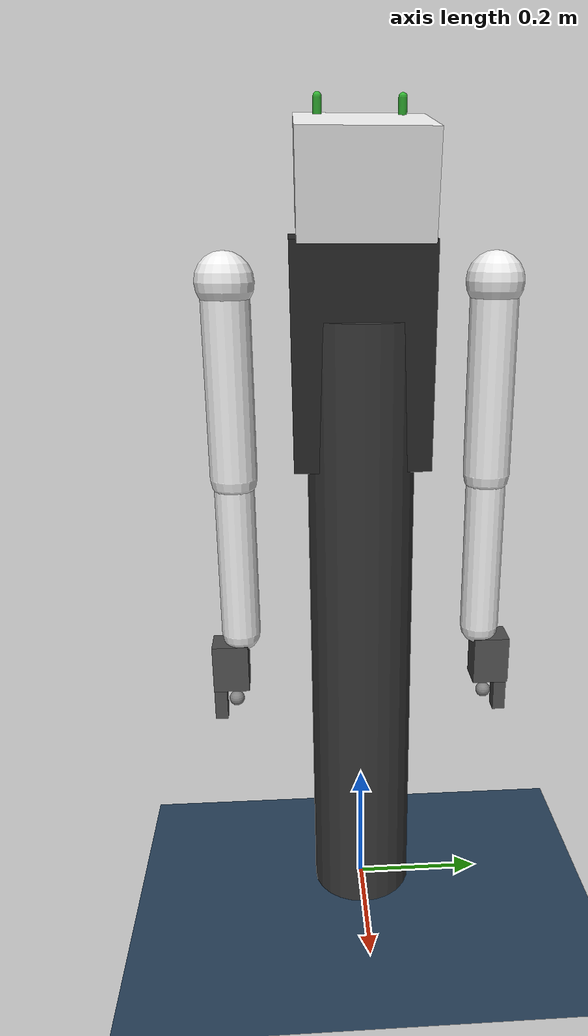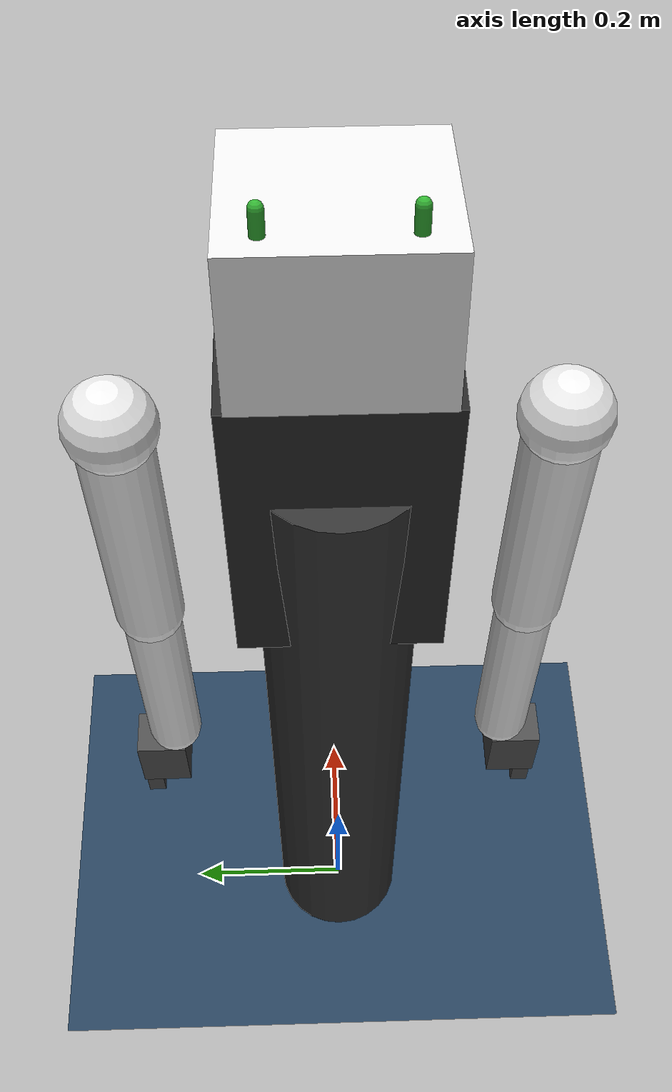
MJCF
<mujoco model="reachy_1_2">

  <compiler angle="radian" meshdir="meshes"/>

  <!-- implicitfast is A-stable: handles stiff actuators (antennas) without NaN -->
  <option timestep="0.002" gravity="0 0 -9.81" iterations="50" solver="Newton"
          integrator="implicitfast" noslip_iterations="10"/>

  <default>
    <!-- Visual proxy: rendered, never collides, carries body mass/inertia. -->
    <default class="visual">
      <geom group="2" contype="0" conaffinity="0"/>
    </default>
    <!-- Robot collision proxy: mass-free contact shape, robot category. -->
    <default class="collision">
      <geom group="3" contype="2" conaffinity="5" mass="0"
            rgba="1 0.5 0.5 0.3"/>
    </default>
    <!-- Static world collision (floor/table/pedestal). -->
    <default class="world">
      <geom contype="1" conaffinity="6"/>
    </default>
  </default>

  <visual>
    <headlight diffuse="0.6 0.6 0.6" ambient="0.3 0.3 0.3" specular="0 0 0"/>
    <rgba haze="0.15 0.25 0.35 1"/>
    <quality shadowsize="2048"/>
    <global offwidth="1280" offheight="960"/>
  </visual>

  <asset>
    <texture name="skybox" type="skybox" builtin="gradient"
             rgb1="0.3 0.5 0.7" rgb2="0 0 0" width="512" height="3072"/>
    <texture name="groundtex" type="2d" builtin="checker" mark="edge"
             rgb1="0.2 0.3 0.4" rgb2="0.1 0.2 0.3" markrgb="0.8 0.8 0.8"
             width="300" height="300"/>
    <material name="groundplane" texture="groundtex" texuniform="true"
              texrepeat="5 5" reflectance="0.2"/>
    <material name="frame"         rgba="0.15 0.15 0.15 1"/>
    <material name="white_plastic" rgba="0.92 0.92 0.92 1"/>
    <material name="dark_gray"     rgba="0.20 0.20 0.20 1"/>
    <material name="gripper_mat"   rgba="0.30 0.30 0.30 1"/>
    <material name="antenna_mat"   rgba="0.20 0.70 0.20 1"/>
    <material name="table_mat"     rgba="0.80 0.70 0.55 1"/>
  </asset>

  <worldbody>
    <!-- ── Environment ─────────────────────────────────────────── -->
    <geom name="floor" class="world" type="plane" size="3 3 0.1"
          material="groundplane"/>
    <light name="overhead" pos="0 0 3" dir="0 0 -1"
           diffuse="0.8 0.8 0.8" specular="0.2 0.2 0.2"/>
    <light name="fill" pos="-1 1 2" dir="1 -1 -1"
           diffuse="0.3 0.3 0.3" specular="0 0 0"/>

    <!-- ── Pedestal (fixed base) ───────────────────────────────── -->
    <!-- URDF: pedestal joint xyz=0 0 1  ⟹ torso origin is 1 m above world -->
    <body name="pedestal" pos="0 0 0">
      <geom name="pedestal_geom" class="world" type="cylinder"
            fromto="0 0 0 0 0 0.95" size="0.08" material="dark_gray"/>

      <!-- ── Torso ─────────────────────────────────────────────── -->
      <body name="torso" pos="0 0 1">
        <inertial pos="0 0 0" mass="12" diaginertia="0.15 0.15 0.08"/>
        <geom name="torso_main" class="visual" type="box"
              size="0.055 0.10 0.16" pos="0 0 -0.1" euler="0 0.05 0"
              material="frame"/>
        <geom name="torso_col" class="collision" type="box"
              size="0.055 0.10 0.16" pos="0 0 -0.1" euler="0 0.05 0"/>

        <!-- ════════════════════ RIGHT ARM ════════════════════════ -->
        <!-- r_shoulder — URDF: torso→r_shoulder xyz=0 -0.19 0 -->
        <body name="r_shoulder" pos="0 -0.19 0">
          <joint name="r_shoulder_pitch" type="hinge" axis="0 1 0"
                 range="-2.618 1.57" damping="1.5"/>
          <geom name="r_shoulder_ball" class="visual" type="sphere" size="0.042"
                material="white_plastic"/>

          <!-- r_shoulder_x — URDF: r_shoulder→r_shoulder_x xyz=0 0 0 -->
          <body name="r_shoulder_x" pos="0 0 0">
            <joint name="r_shoulder_roll" type="hinge" axis="1 0 0"
                   range="-3.14 0.174" damping="1.5"/>
            <!-- massless intermediate frame — tiny marker sphere -->
            <geom name="r_shx_marker" class="visual" type="sphere" size="0.005"
                  material="dark_gray" mass="0.001"/>

            <!-- r_upper_arm — URDF: r_shoulder_x→r_upper_arm xyz=0 0 0 -->
            <body name="r_upper_arm" pos="0 0 0">
              <joint name="r_arm_yaw" type="hinge" axis="0 0 1"
                     range="-1.57 1.57" damping="1.0"/>
              <geom name="r_upper_arm_cap" class="visual" type="capsule"
                    fromto="0 0 0 0 0 -0.28" size="0.035"
                    material="white_plastic"/>
              <geom name="r_upper_arm_col" class="collision" type="capsule"
                    fromto="0 0 0 0 0 -0.28" size="0.035"/>

              <!-- r_forearm — URDF: r_upper_arm→r_forearm xyz=0 0 -0.28 -->
              <body name="r_forearm" pos="0 0 -0.28">
                <joint name="r_elbow_pitch" type="hinge" axis="0 1 0"
                       range="-2.182 0" damping="0.8"/>
                <geom name="r_elbow_ball" class="visual" type="sphere" size="0.032"
                      material="frame"/>
                <geom name="r_forearm_cap" class="visual" type="capsule"
                      fromto="0 0 0 0 0 -0.25" size="0.030"
                      material="white_plastic"/>
                <geom name="r_forearm_col" class="collision" type="capsule"
                      fromto="0 0 0 0 0 -0.25" size="0.030"/>

                <!-- r_wrist — URDF: r_forearm→r_wrist xyz=0 0 0 -->
                <body name="r_wrist" pos="0 0 0">
                  <joint name="r_forearm_yaw" type="hinge" axis="0 0 1"
                         range="-1.745 1.745" damping="0.4" armature="0.01"/>
                  <geom name="r_wrist_marker" class="visual" type="sphere" size="0.005"
                        material="dark_gray" mass="0.001"/>

                  <!-- r_wrist2hand — URDF: r_wrist→r_wrist2hand xyz=0 0 -0.25 -->
                  <body name="r_wrist2hand" pos="0 0 -0.25">
                    <joint name="r_wrist_pitch" type="hinge" axis="0 1 0"
                           range="-0.785 0.785" damping="0.4" armature="0.006"/>
                    <geom name="r_wrist_ball" class="visual" type="sphere" size="0.028"
                          material="frame"/>

                    <!-- r_gripper_thumb — URDF: r_wrist2hand→r_gripper_thumb xyz=0 0 -0.0325 -->
                    <body name="r_gripper_thumb" pos="0 0 -0.0325">
                      <joint name="r_wrist_roll" type="hinge" axis="1 0 0"
                             range="-0.785 0.785" damping="0.4"/>
                      <geom name="r_thumb_body" class="visual" type="box"
                            size="0.025 0.028 0.038" pos="0 -0.018 -0.022"
                            material="gripper_mat"/>
                      <geom name="r_thumb_col" class="collision" type="box"
                            size="0.014 0.008 0.022" pos="0 0.005 -0.085"/>

                      <!-- r_gripper_finger — URDF: r_gripper_thumb→r_gripper_finger xyz=0 -0.037 -0.03998 -->
                      <body name="r_gripper_finger" pos="0 -0.037 -0.03998">
                        <joint name="r_gripper" type="hinge" axis="1 0 0"
                               range="-1.2 0.35" damping="0.3"/>
                        <geom name="r_finger_body" class="visual" type="box"
                              size="0.012 0.010 0.038" pos="0 0 -0.038"
                              material="gripper_mat"/>
                        <!-- moving pad: closes in +y toward the thumb pad -->
                        <geom name="r_finger_col" class="collision" type="box"
                              size="0.014 0.008 0.014" pos="0 0 -0.055"/>
                      </body>

                      <!-- r_tip site — URDF: xyz=0 -0.012 -0.085 from r_gripper_thumb -->
                      <site name="r_tip" pos="0 -0.012 -0.085" size="0.012"/>
                    </body>
                  </body>
                </body>
              </body>
            </body>
          </body>
        </body>

        <!-- ════════════════════ LEFT ARM ═════════════════════════ -->
        <!-- l_shoulder — URDF: torso→l_shoulder xyz=0 0.19 0 -->
        <body name="l_shoulder" pos="0 0.19 0">
          <joint name="l_shoulder_pitch" type="hinge" axis="0 1 0"
                 range="-2.618 1.57" damping="1.5"/>
          <geom name="l_shoulder_ball" class="visual" type="sphere" size="0.042"
                material="white_plastic"/>

          <!-- l_shoulder_x -->
          <body name="l_shoulder_x" pos="0 0 0">
            <joint name="l_shoulder_roll" type="hinge" axis="1 0 0"
                   range="-0.174 3.14" damping="1.5"/>
            <geom name="l_shx_marker" class="visual" type="sphere" size="0.005"
                  material="dark_gray" mass="0.001"/>

            <!-- l_upper_arm -->
            <body name="l_upper_arm" pos="0 0 0">
              <joint name="l_arm_yaw" type="hinge" axis="0 0 1"
                     range="-1.57 1.57" damping="1.0"/>
              <geom name="l_upper_arm_cap" class="visual" type="capsule"
                    fromto="0 0 0 0 0 -0.28" size="0.035"
                    material="white_plastic"/>
              <geom name="l_upper_arm_col" class="collision" type="capsule"
                    fromto="0 0 0 0 0 -0.28" size="0.035"/>

              <!-- l_forearm -->
              <body name="l_forearm" pos="0 0 -0.28">
                <joint name="l_elbow_pitch" type="hinge" axis="0 1 0"
                       range="-2.182 0" damping="0.8"/>
                <geom name="l_elbow_ball" class="visual" type="sphere" size="0.032"
                      material="frame"/>
                <geom name="l_forearm_cap" class="visual" type="capsule"
                      fromto="0 0 0 0 0 -0.25" size="0.030"
                      material="white_plastic"/>
                <geom name="l_forearm_col" class="collision" type="capsule"
                      fromto="0 0 0 0 0 -0.25" size="0.030"/>

                <!-- l_wrist -->
                <body name="l_wrist" pos="0 0 0">
                  <joint name="l_forearm_yaw" type="hinge" axis="0 0 1"
                         range="-1.745 1.745" damping="0.4" armature="0.01"/>
                  <geom name="l_wrist_marker" class="visual" type="sphere" size="0.005"
                        material="dark_gray" mass="0.001"/>

                  <!-- l_wrist2hand -->
                  <body name="l_wrist2hand" pos="0 0 -0.25">
                    <joint name="l_wrist_pitch" type="hinge" axis="0 1 0"
                           range="-0.785 0.785" damping="0.4" armature="0.006"/>
                    <geom name="l_wrist_ball" class="visual" type="sphere" size="0.028"
                          material="frame"/>

                    <!-- l_gripper_thumb -->
                    <body name="l_gripper_thumb" pos="0 0 -0.0325">
                      <joint name="l_wrist_roll" type="hinge" axis="1 0 0"
                             range="-0.785 0.785" damping="0.4"/>
                      <geom name="l_thumb_body" class="visual" type="box"
                            size="0.025 0.028 0.038" pos="0 0.018 -0.022"
                            material="gripper_mat"/>
                      <!-- R12-502: opposed-pad pinch model, mirrored (thumb pad at -y) -->
                      <geom name="l_thumb_col" class="collision" type="box"
                            size="0.014 0.008 0.022" pos="0 -0.005 -0.085"/>

                      <!-- l_gripper_finger — URDF: xyz=0 0.037 -0.03998 -->
                      <body name="l_gripper_finger" pos="0 0.037 -0.03998">
                        <joint name="l_gripper" type="hinge" axis="1 0 0"
                               range="-0.35 1.2" damping="0.3"/>
                        <geom name="l_finger_body" class="visual" type="box"
                              size="0.012 0.010 0.038" pos="0 0 -0.038"
                              material="gripper_mat"/>
                        <!-- moving pad: closes in -y toward the thumb pad -->
                        <geom name="l_finger_col" class="collision" type="box"
                              size="0.014 0.008 0.014" pos="0 0 -0.055"/>
                      </body>

                      <!-- l_tip site — URDF: xyz=0 0.012 -0.085 from l_gripper_thumb -->
                      <site name="l_tip" pos="0 0.012 -0.085" size="0.012"/>
                    </body>
                  </body>
                </body>
              </body>
            </body>
          </body>
        </body>

        <!-- ════════════════════ HEAD / NECK ══════════════════════ -->
        <body name="head_x" pos="0.015 0 0.095" euler="0 0.174 0">
          <joint name="neck_roll" type="hinge" axis="1 0 0"
                 range="-0.8 0.8" damping="0.6"/>
          <geom name="head_x_marker" class="visual" type="sphere" size="0.005"
                material="dark_gray" mass="0.001"/>

          <!-- head_y — URDF: neck_pitch joint at same xyz as head_x -->
          <body name="head_y" pos="0 0 0">
            <joint name="neck_pitch" type="hinge" axis="0 1 0"
                   range="-0.8 1.13" damping="0.6"/>
            <geom name="head_y_marker" class="visual" type="sphere" size="0.005"
                  material="dark_gray" mass="0.001"/>

            <!-- head_z — URDF: neck_yaw joint -->
            <body name="head_z" pos="0 0 0">
              <joint name="neck_yaw" type="hinge" axis="0 0 1"
                     range="-2.79 2.79" damping="0.6"/>

              <!-- head — URDF: neck_fixed (fixed joint, no relative motion) -->
              <body name="head" pos="0 0 0">
                <!-- head box: centred slightly above and forward of neck attachment -->
                <geom name="head_box" class="visual" type="box"
                      size="0.088 0.090 0.068" pos="0.010 0 0.042"
                      material="white_plastic"/>
                <geom name="head_col" class="collision" type="box"
                      size="0.088 0.090 0.068" pos="0.010 0 0.042"/>

                <camera name="left_camera"
                        pos="0.0033  0.03625 0.061"
                        xyaxes="0 -1 0  0 0 1"
                        fovy="61.1"/>
                <camera name="right_camera"
                        pos="0.0033 -0.03625 0.061"
                        xyaxes="0 -1 0  0 0 1"
                        fovy="62.1"/>

                <!-- ── Left antenna — URDF: head→l_antenna_link xyz=-0.052 0.057 0.086 -->
                <body name="l_antenna_link" pos="-0.052 0.057 0.086">
                  <joint name="l_antenna" type="hinge" axis="0 0 1"
                         range="-2.618 2.618" damping="0.05"/>
                  <geom name="l_antenna_cap" class="visual" type="capsule"
                        fromto="0 0 0 0 0 0.045" size="0.006"
                        material="antenna_mat"/>
                </body>

                <!-- ── Right antenna — URDF: head→r_antenna_link xyz=-0.052 -0.057 0.086 -->
                <body name="r_antenna_link" pos="-0.052 -0.057 0.086">
                  <joint name="r_antenna" type="hinge" axis="0 0 1"
                         range="-2.618 2.618" damping="0.05"/>
                  <geom name="r_antenna_cap" class="visual" type="capsule"
                        fromto="0 0 0 0 0 0.045" size="0.006"
                        material="antenna_mat"/>
                </body>

              </body>  <!-- head -->
            </body>  <!-- head_z -->
          </body>  <!-- head_y -->
        </body>  <!-- head_x -->

      </body>  <!-- torso -->
    </body>  <!-- pedestal -->

  </worldbody>

  <actuator>
    <position name="act_r_shoulder_pitch" joint="r_shoulder_pitch"
              kp="300" kv="20" ctrlrange="-2.618  1.570" forcerange="-60 60"/>
    <position name="act_r_shoulder_roll"  joint="r_shoulder_roll"
              kp="300" kv="20" ctrlrange="-3.140  0.174" forcerange="-60 60"/>
    <position name="act_r_arm_yaw"        joint="r_arm_yaw"
              kp="150" kv="10" ctrlrange="-1.570  1.570" forcerange="-30 30"/>
    <position name="act_r_elbow_pitch"    joint="r_elbow_pitch"
              kp="200" kv="11" ctrlrange="-2.182  0.000" forcerange="-40 40"/>
    <position name="act_r_forearm_yaw"    joint="r_forearm_yaw"
              kp="80"  kv="5"  ctrlrange="-1.745  1.745" forcerange="-15 15"/>
    <position name="act_r_wrist_pitch"    joint="r_wrist_pitch"
              kp="60"  kv="3"  ctrlrange="-0.785  0.785" forcerange="-10 10"/>
    <position name="act_r_wrist_roll"     joint="r_wrist_roll"
              kp="60"  kv="3"  ctrlrange="-0.785  0.785" forcerange="-10 10"/>
    <position name="act_r_gripper"        joint="r_gripper"
              kp="15"  kv="1"  ctrlrange="-1.200  0.350" forcerange="-8 8"/>

    <!-- Left arm (8 DOF) — gains match the right arm for symmetry. -->
    <position name="act_l_shoulder_pitch" joint="l_shoulder_pitch"
              kp="300" kv="20" ctrlrange="-2.618  1.570" forcerange="-60 60"/>
    <position name="act_l_shoulder_roll"  joint="l_shoulder_roll"
              kp="300" kv="20" ctrlrange="-0.174  3.140" forcerange="-60 60"/>
    <position name="act_l_arm_yaw"        joint="l_arm_yaw"
              kp="150" kv="10" ctrlrange="-1.570  1.570" forcerange="-30 30"/>
    <position name="act_l_elbow_pitch"    joint="l_elbow_pitch"
              kp="200" kv="11" ctrlrange="-2.182  0.000" forcerange="-40 40"/>
    <position name="act_l_forearm_yaw"    joint="l_forearm_yaw"
              kp="80"  kv="5"  ctrlrange="-1.745  1.745" forcerange="-15 15"/>
    <position name="act_l_wrist_pitch"    joint="l_wrist_pitch"
              kp="60"  kv="3"  ctrlrange="-0.785  0.785" forcerange="-10 10"/>
    <position name="act_l_wrist_roll"     joint="l_wrist_roll"
              kp="60"  kv="3"  ctrlrange="-0.785  0.785" forcerange="-10 10"/>
    <position name="act_l_gripper"        joint="l_gripper"
              kp="15"  kv="1"  ctrlrange="-0.350  1.200" forcerange="-8 8"/>

    <!-- Head / neck (3 DOF) -->
    <position name="act_neck_roll"        joint="neck_roll"
              kp="80"  kv="8"  ctrlrange="-0.800  0.800" forcerange="-30 30"/>
    <position name="act_neck_pitch"       joint="neck_pitch"
              kp="80"  kv="8"  ctrlrange="-0.800  1.130" forcerange="-30 30"/>
    <position name="act_neck_yaw"         joint="neck_yaw"
              kp="80"  kv="8"  ctrlrange="-2.790  2.790" forcerange="-30 30"/>

    <!-- Antennas (2 DOF) — low kp: capsules have tiny rotational inertia ~1e-6 kg⋅m² -->
    <position name="act_l_antenna"        joint="l_antenna"
              kp="0.05" kv="0.02" ctrlrange="-2.618  2.618" forcerange="-0.5 0.5"/>
    <position name="act_r_antenna"        joint="r_antenna"
              kp="0.05" kv="0.02" ctrlrange="-2.618  2.618" forcerange="-0.5 0.5"/>
  </actuator>

  <!-- Named poses: all joints at zero = arms hanging down, head straight -->
  <keyframe>
    <key name="home"
         qpos="0 0 0 0 0 0 0 0  0 0 0 0 0 0 0 0  0 0.45 0  0 0"
         ctrl="0 0 0 0 0 0 0 0  0 0 0 0 0 0 0 0  0 0.45 0  0 0"/>
  </keyframe>

</mujoco>
